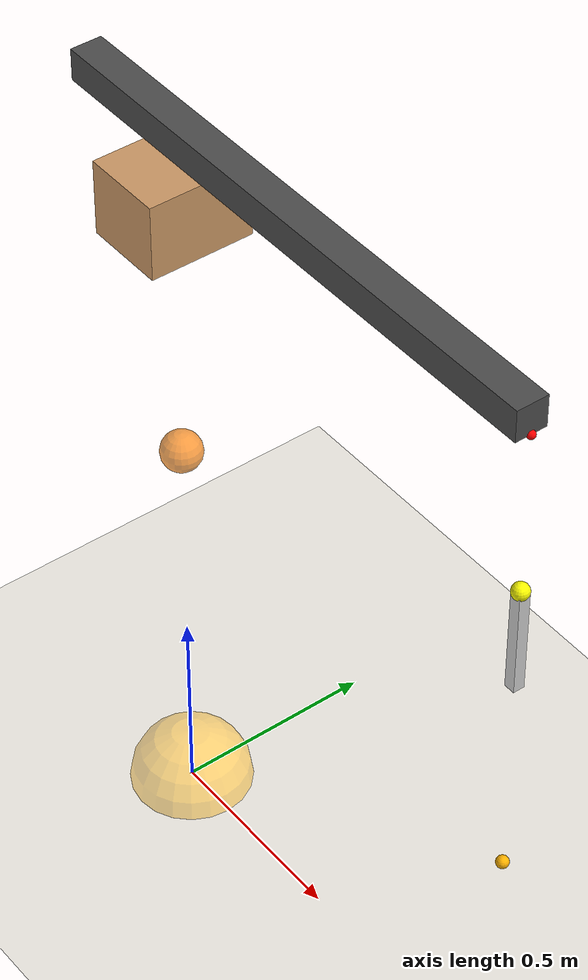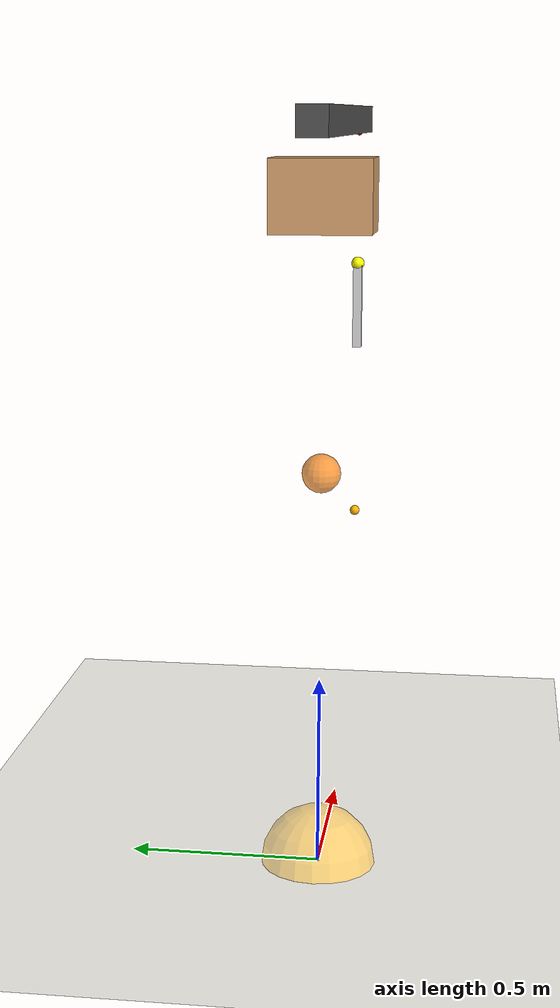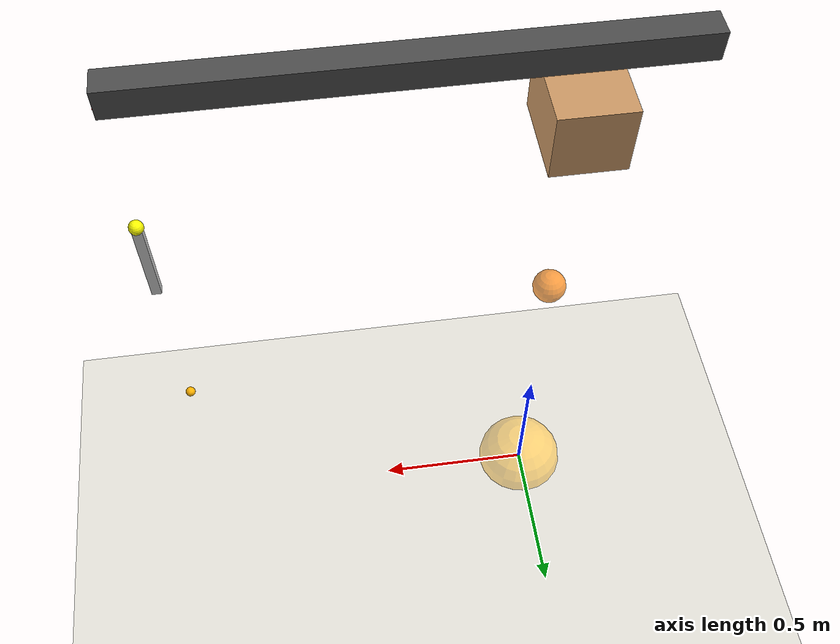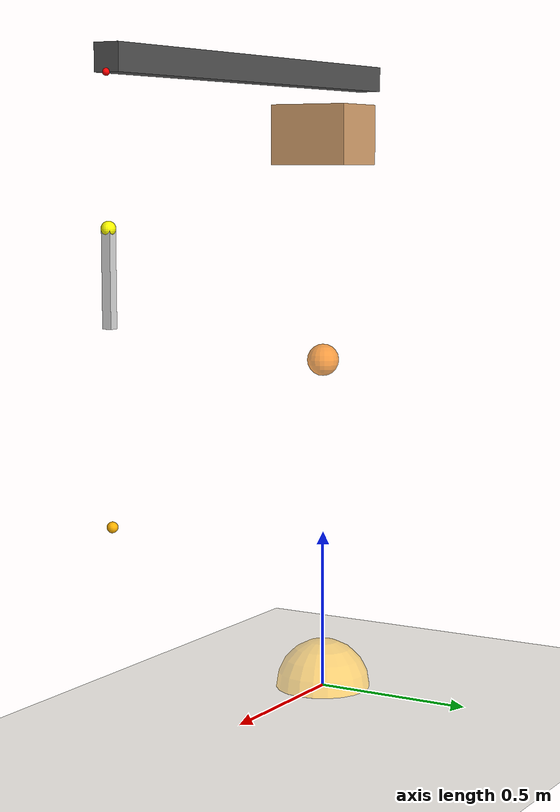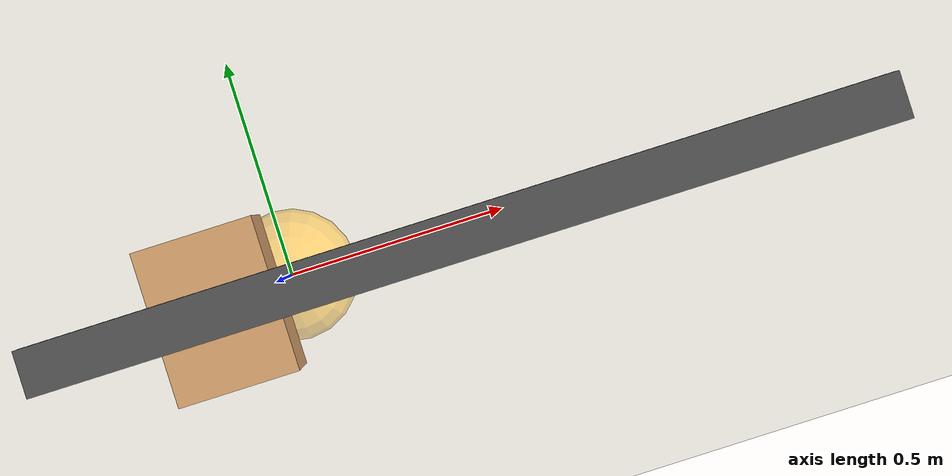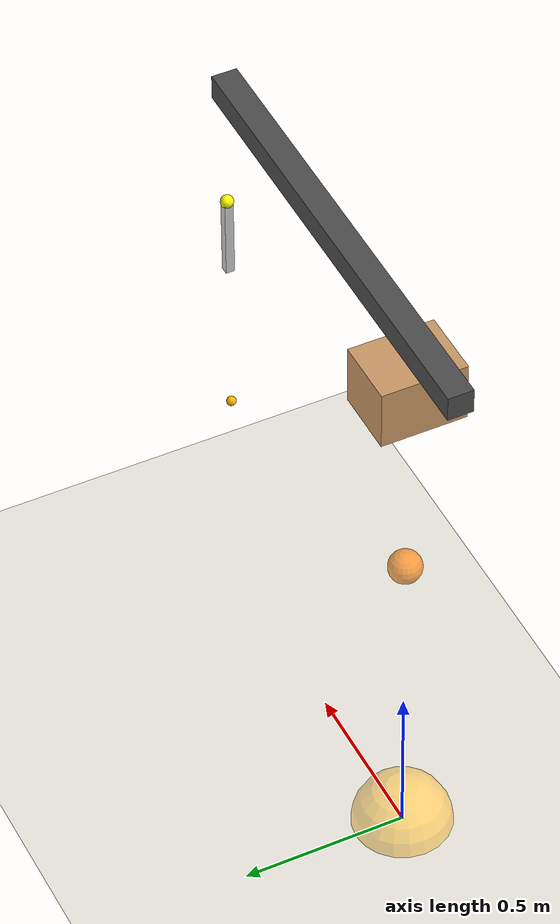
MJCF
<mujoco>
  <option integrator="implicitfast" jacobian="sparse" solver="CG" tolerance="1e-5" >
    <flag warmstart="disable"/>
  </option>
  <compiler autolimits="true" angle="radian"/>
  <visual>
    <global offwidth="1920"
            offheight="1080"/>
  </visual>

  <worldbody>

    <light diffuse=".75 0.75 0.75" pos="0 0 10" dir="0 0 -1"/>
    <geom type="plane" size="5 5 0.1" rgba="0.7 0.7 0.6 1"/>
    <body name="floor" pos="0 0 0.00000001" >

    <body name="reference_base" pos="0 0 1">

      <!-- 6DoF sliders added -->
      <joint name="z_slide_joint" type="slide" axis="0 0 1" limited="true" range="-1 1"/>
      <joint name="y_slide_joint" type="slide" axis="0 1 0" limited="true" range="-4 4"/>
      <joint name="x_slide_joint" type="slide" axis="1 0 0" limited="true" range="-4 4"/>
      <geom name="slider_indicator" type="sphere" size="0.05" pos="0 0 0.05" rgba="1 0.5 0 0.7"/>
      <joint name="base_x_rot_joint" type="hinge" axis="1 0 0" limited="false" range="-0.52 0.52"/>
      <joint name="base_y_rot_joint" type="hinge" axis="0 1 0" limited="false" range="-0.52 0.52"/>
      <joint name="base_z_rot_joint" type="hinge" axis="0 0 1" limited="false" range="-0.52 0.52"/>

      <body name="base" pos="0 0 0.285" euler="0 0 0" gravcomp="0">
        <body name="cab" pos="0 0 0.464" gravcomp="0">
          <joint name="slew-joint" type="hinge" axis="0 0 1" pos="0 0 -0.5" limited="true"
                range="-1.3 1.3" armature="0.005" />
          <!-- inertia values from MUJOCO, not real world -->
          <inertial pos="0 0 0" mass="7.935" diaginertia="6.57e-2 4.88e-2 6.98e-2"/>
          <geom name="cab_geom" type="box" size="0.100 0.128 0.092" rgba="0.8 0.6 0.4 1"/>

          <site name="cab_imu" pos="0 0 0" size="0.01" />

          <body name="boom" pos="0.41 0 0.18" gravcomp="0">
            <!-- 0.18 = 14cm from luff actuator to top of the cab mount plate + half boom height-->
            <joint name="luff-joint" type="hinge" pos="-0.41 0 -0.18" axis="0 -1 0"
                  range="0.001 1.2" limited="true" armature="0.005" />
            <!-- inertia values from MUJOCO, not real world -->
            <inertial pos="0 0 0" mass="5.777" diaginertia="5.65e-3 9.74e-1 9.74e-1"/>
            <geom name="boom_geom" type="box" size="0.71 0.0383 0.0383" rgba="0.3 0.3 0.3 1"
                  contype="0" conaffinity="0"/>

            <site name="boom_imu" pos="0 0 0" size="0.01" />

            <site name="b_tip" pos="0.71 0 -0.038" rgba="1 0 0 1" size="0.01" />
            <body name="boom_tip" pos="0.71 0 -0.038">
              <!-- arbitrary mass/inertia, not too small to avoid instability -->
              <inertial pos="0 0 0" mass="0.01" diaginertia="0.001 0.001 0.001"/>
              <joint name="boom-tip-beta-hinge" type="hinge" axis="1 0 0" damping="0.01"
                    limited="true" range="-1.5 1.5"/>
              <joint name="boom-tip-phi-hinge" type="hinge" axis="0 1 0" damping="0.01"
                    limited="true" range="-1.5 1.5"/>
              <joint name="hoist-slider" type="slide" axis="0 0 -1" limited="true"
                    range="0.1 1.0" ref="0.2" armature="0.00032"/>

              <body name="payload_tip" pos="0 0 -0.4">
                <!-- arbitrary mass/inertia, not too small to avoid instability -->
                <inertial pos="0 0 0" mass="0.01" diaginertia="0.001 0.001 0.001"/>
                <geom name="p_tip_geom" type="sphere" size="0.02" rgba="1 1 0 1"
                      contype="0" conaffinity="0"/>
                <site name="p_tip" pos="0 0 0" size="0.01"/>
                <joint name="p-tip-eta-hinge" type="hinge" axis="1 0 0" damping="0.0001"
                      limited="true" range="-1.5 1.5"/>
                <joint name="p-tip-sigma-hinge" type="hinge" axis="0 1 0" damping="0.0001"
                      limited="true" range="-1.5 1.5"/>

                  <body name="payload" pos="0 0 0">
                    <!-- inertia values from MUJOCO, not real world -->
                    <inertial pos="0 0 -0.13" mass="0.2" diaginertia="1.14e-3 1.14e-3 2.43e-5"/>
                    <geom name="payload_geom" pos="0 0 -0.13" type="box" size="0.0135 0.0135 0.13"
                          rgba="0.8 0.8 0.8 1" contype="0" conaffinity="0"/>
                    <site name="p_cg" pos="0 0 -0.13"/>
                  </body> <!-- payload -->

                </body> <!-- payload tip-->
              </body> <!-- boom tip-->
            </body> <!-- boom -->
          </body> <!-- cab -->
        </body> <!-- base -->
      </body> <!-- reference base -->
    </body> <!-- floor -->

    <!-- I need this vicon mocap body here as a place holder for the task parameters in mjpc-->
    <body name="vicon" mocap="true" pos="1.12 0. 0.706">
      <geom name="vicon_geom" type="sphere" size="0.015" rgba="1 0.7 0 1"
            contype="0" conaffinity="0"/>
      <site name="vicon_marker" pos="0 0 0"/>
    </body>

    <!-- visualisation for the target position to move the payload to -->
    <body name="target" mocap="true" pos="0 0 0">
      <geom name="target_geom" type="sphere" size="0.15" rgba="1 0.7 0 0.5"
            contype="0" conaffinity="0"/>
      <site name="target_marker" pos="0 0 0"/>
    </body>

  </worldbody>

<actuator>

  <!-- 6DoF base actautors -->
  <position name="base_x_pos" joint="x_slide_joint" kp="5000" kv="1000" ctrlrange="-1 1" forcerange="-1000 1000"/>
  <position name="base_y_pos" joint="y_slide_joint" kp="5000" kv="1000" ctrlrange="-1 1" forcerange="-1000 1000"/>
  <position name="base_z_pos" joint="z_slide_joint" kp="5000" kv="1000" ctrlrange="-1 1" forcerange="-1000 1000"/>
  <position name="base_x_rot" joint="base_x_rot_joint" kp="1000" kv="100" ctrlrange="-0.52 0.52" forcerange="-1000 1000"/>
  <position name="base_y_rot" joint="base_y_rot_joint" kp="1000" kv="100" ctrlrange="-0.52 0.52" forcerange="-1000 1000"/>
  <position name="base_z_rot" joint="base_z_rot_joint" kp="1000" kv="100" ctrlrange="-0.52 0.52" forcerange="-1000 1000"/>

  <!-- main crane actuators -->
  <velocity name="slew-velocity" joint="slew-joint" kv="0.0006385" gear="100"
            forcerange="-68 68" ctrlrange="-120 120" />
  <velocity name="luff-velocity" joint="luff-joint" kv="0.11" gear="200"
           forcerange="-68 68" ctrlrange="-105 105"/>
  <velocity name="hoist-velocity" joint="hoist-slider" kv="2500"
            ctrlrange="-0.295 0.295" lengthrange="0.1 1.0"/>

</actuator>

  <sensor>
    <!-- Oscars sensors -->
    <jointactuatorfrc name="slew_joint_frc" joint="slew-joint" />
    <jointactuatorfrc name="luff_joint_frc" joint="luff-joint" />
    <actuatorfrc name="slew_act_frc" actuator="slew-velocity" />
    <actuatorfrc name="luff_act_frc" actuator="luff-velocity" />
    <actuatorvel name="slew_act_vel" actuator="slew-velocity" />
    <actuatorvel name="luff_act_vel" actuator="luff-velocity" />
    <framelinvel name="payload_velocity" objtype="site" objname="p_cg" />
    <framequat name="cab_angular_orientation" objtype="site" objname="cab_imu" />
    <frameangvel name="cab_angular_velocity" objtype="site" objname="cab_imu" />
    <framequat name="boom_angular_orientation" objtype="site" objname="boom_imu" />
    <frameangvel name="boom_angular_velocity" objtype="site" objname="boom_imu" />

    <!-- my sensors -->
    <framepos name="payload_position" objtype="site" objname="p_cg" />
    <framequat name="payload_orientation" objtype="site" objname="p_cg" />
    <framelinvel name="payload_linear_velocity" objtype="site" objname="p_cg" />
    <frameangvel name="payload_angular_velocity" objtype="site" objname="p_cg" />
    <framelinacc name="payload_linear_acceleration" objtype="site" objname="p_cg" />
    <framepos name="boom_tip_position" objtype="site" objname="b_tip" />

    <!-- Base position -->
    <framepos name="reference_base_position" objtype="xbody" objname="reference_base" />
    <framelinvel name="base_linear_velocity" objtype="xbody" objname="base" reftype="xbody" refname="reference_base" />

    <!-- swap for these global measurements -->
    <framepos name="base_position" objtype="xbody" objname="base" />
    <framequat name="base_orientation" objtype="xbody" objname="base" />

    <!-- Relative payload position and vel, to base -->
    <framepos name="payload_position_base" objtype="site" objname="p_cg" reftype="xbody" refname="base" />
    <framelinvel name="payload_linear_velocity_base" objtype="site" objname="p_cg" reftype="xbody" refname="base" />

  </sensor>

</mujoco>
